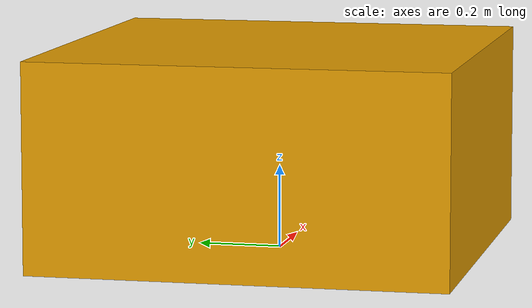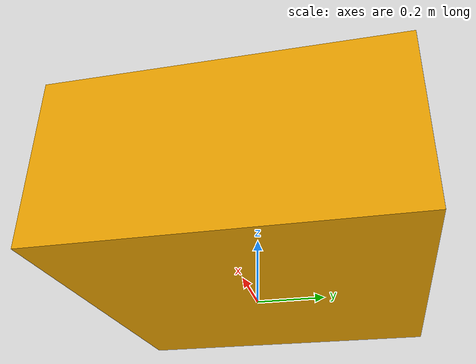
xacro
<?xml version="1.0"?>
<robot xmlns:sensor="http://playerstage.sourceforge.net/gazebo/xmlschema/#sensor"
       xmlns:controller="http://playerstage.sourceforge.net/gazebo/xmlschema/#controller"
       xmlns:interface="http://playerstage.sourceforge.net/gazebo/xmlschema/#interface"
       xmlns:xacro="http://playerstage.sourceforge.net/gazebo/xmlschema/#interface"
       name="wall" >

        <!-- common stuff -->
        <include filename="$(find cob_description)/urdf/common.xacro" />

        <!-- foot for arm -->
        <link name="base_link">
        <visual>
            <origin xyz="0 0 0.25" rpy="0 0 0" />
            <geometry>
                <box size="1 1 0.5"/>
           </geometry>
        </visual>
        <collision>
            <origin xyz="0 0 0.25" rpy="0 0 0" />
            <geometry>
                <box size="1 1 0.5"/>
            </geometry>
        </collision>
        <inertial>
            <origin xyz="0 0 0.25" rpy="0 0 0"/>
            <mass value="10000.0"/>
            <inertia ixx="10000.0"  ixy="0"  ixz="0" iyy="10000.0" iyz="0" izz="10000.0" />
        </inertial>
    </link>

</robot>
